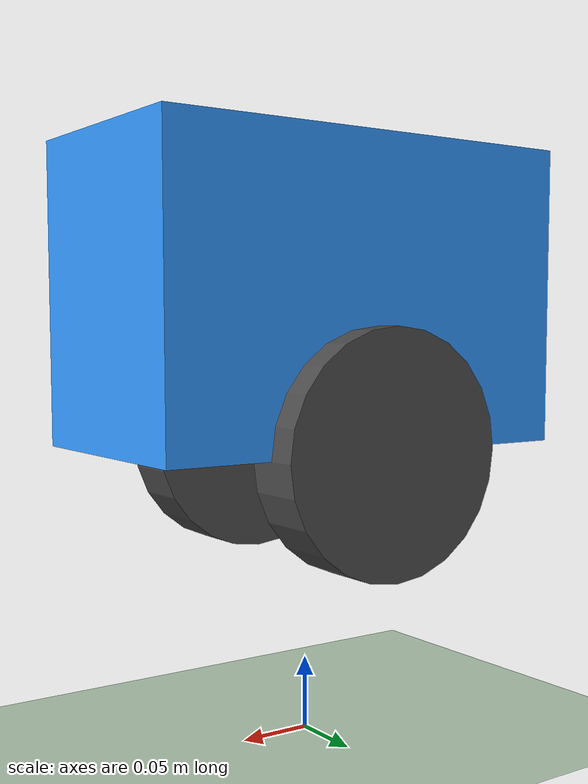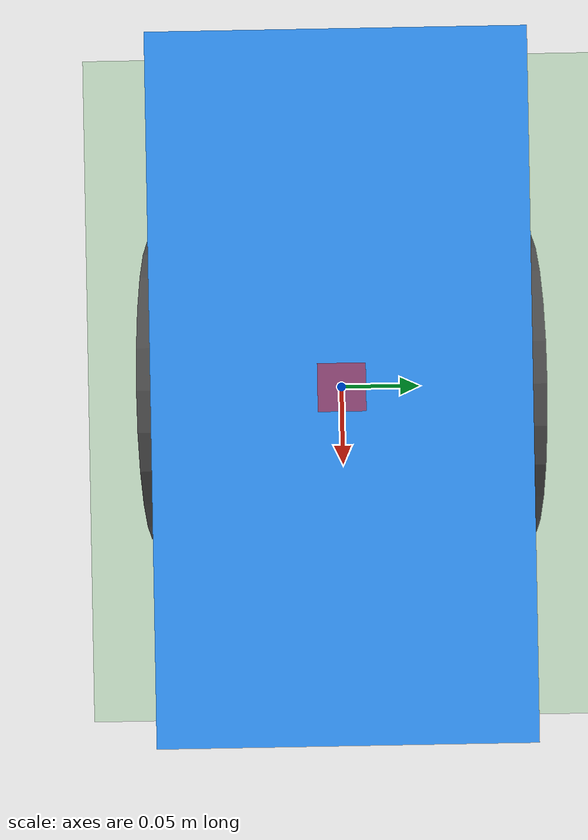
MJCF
<?xml version="1.0" encoding="utf-8"?>
<mujoco model="simple_wheeled_robot">
  <!-- Настройки -->
  <option timestep="0.005" integrator="RK4" cone="elliptic"/>

  <!-- Статистика -->
  <statistic center="0 0 0.5" extent="2"/>

  <!-- Мир -->
  <worldbody>
    <!-- Пол -->
    <light name="top" pos="0 0 3" dir="0 0 -1" directional="true"/>
    <geom name="floor" type="plane" size="10 10 0.1" rgba="0.8 0.9 0.8 1" friction="1 0.005 0.0001"/>

    <!-- Основание робота (кузов) -->
    <body name="base" pos="0 0 0.3">
      <freejoint name="base_joint"/>
      <geom name="base_geom" type="box" size="0.15 0.08 0.1" mass="2.0" rgba="0.2 0.6 1 1"/>

      <!-- Сайт для IMU -->
      <site name="imu_site" pos="0 0 0.1" type="box" size="0.01 0.01 0.01" rgba="1 0 0 0.5"/>

      <!-- Левое колесо - размещено по центру слева -->
      <body name="left_wheel" pos="0 0.08 -0.1">  <!-- Y = 0.08 (слева), Z = -0.1 (ниже основания) -->
        <!-- Шарнир для вращения колеса -->
        <joint name="left_wheel_joint" type="hinge" axis="0 1 0" pos="0 0 0" damping="0.1"/>
        <!--
          Цилиндр: size="радиус высота"
          Для вертикального колеса используем euler="90 0 0" (поворот вокруг оси X)
          ИЛИ используем тип "sphere" для упрощения
        -->
        <geom name="left_wheel_geom" type="cylinder" size="0.08 0.02"
              euler="90 0 0" mass="0.5" rgba="0.3 0.3 0.3 1"/>
        <!-- Альтернатива: сфера (проще) -->
        <!-- Сайт для левого колеса -->
        <site name="left_wheel_site" pos="0 0 0" type="sphere" size="0.01" rgba="0 1 0 0.5"/>
      </body>

      <!-- Правое колесо - размещено по центру справа -->
      <body name="right_wheel" pos="0 -0.08 -0.1">  <!-- Y = -0.08 (справа), Z = -0.1 (ниже основания) -->
        <joint name="right_wheel_joint" type="hinge" axis="0 1 0" pos="0 0 0" damping="0.1"/>
        <geom name="right_wheel_geom" type="cylinder" size="0.08 0.02"
              euler="90 0 0" mass="0.5" rgba="0.3 0.3 0.3 1"/>
        <!-- Альтернатива: сфера -->
        <!-- Сайт для правого колеса -->
        <site name="right_wheel_site" pos="0 0 0" type="sphere" size="0.01" rgba="0 1 0 0.5"/>
      </body>
    </body>
  </worldbody>

  <!-- Приводы -->
  <actuator>
    <!-- Двигатели колес -->
    <motor name="left_wheel_motor" joint="left_wheel_joint" gear="50" ctrllimited="true" ctrlrange="-100 100"/>
    <motor name="right_wheel_motor" joint="right_wheel_joint" gear="50" ctrllimited="true" ctrlrange="-100 100"/>
  </actuator>

  <!-- Датчики -->
  <sensor>
    <!-- Гироскоп и акселерометр -->
    <gyro name="base_gyro" site="imu_site"/>
    <accelerometer name="base_accel" site="imu_site"/>

    <!-- Позиция и ориентация -->
    <framepos name="base_pos" objtype="body" objname="base"/>
    <framequat name="base_quat" objtype="body" objname="base"/>

    <!-- Скорость колес -->
    <jointvel name="left_wheel_joint_vel" joint="left_wheel_joint"/>
    <jointvel name="right_wheel_joint_vel" joint="right_wheel_joint"/>
  </sensor>
</mujoco>
